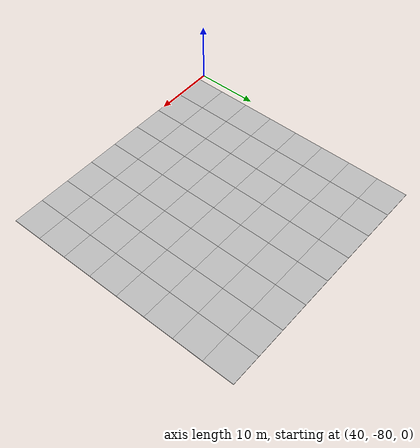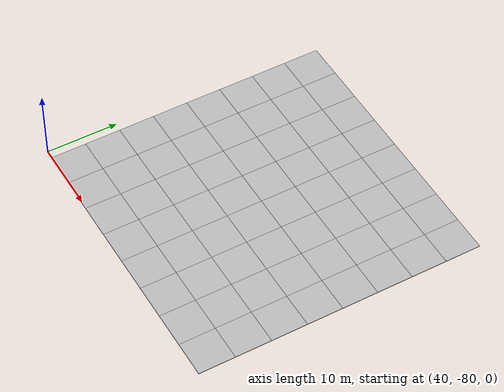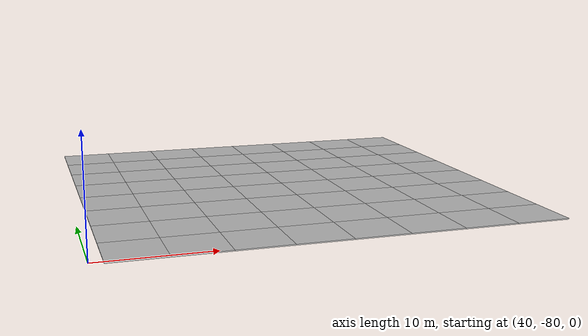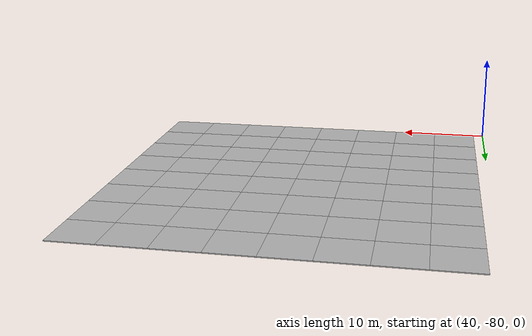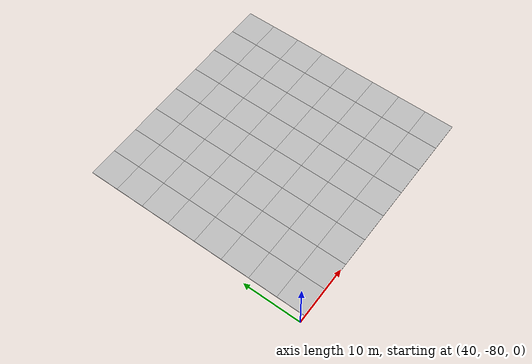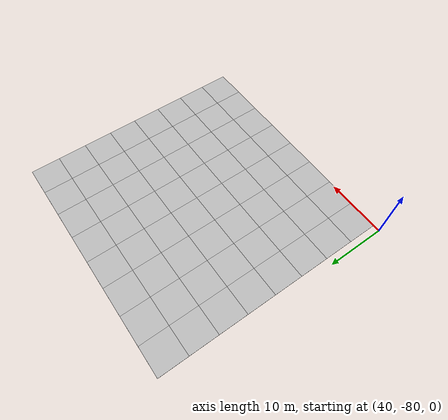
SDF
<sdf version="1.7">
 <world name="default">
  <model name="mud_plane_80x80_0">
   <model name="mud_plane_40x40_0">
    <model name="mud_plane_20x20">
     <model name="mud_plane">
      <static>1</static>
      <link name="link">
       <collision name="collision"><geometry><box><size>10 10 0.1</size></box></geometry></collision>
       <visual name="visual_1">
        <pose>-2.5 2.5 -0.05 0 -0 0</pose>
        <cast_shadows>0</cast_shadows>
        <geometry><box><size>5 5 0.1</size></box></geometry>
        <material>
         <script>
          <uri>model://mud_plane/materials/scripts</uri>
          <uri>model://mud_plane/materials/textures</uri>
          <name>vrc/mud</name>
         </script>
        </material>
       </visual>
       <visual name="visual_2">
        <pose>2.5 2.5 -0.05 0 -0 0</pose>
        <cast_shadows>0</cast_shadows>
        <geometry><box><size>5 5 0.1</size></box></geometry>
        <material>
         <script>
          <uri>model://mud_plane/materials/scripts</uri>
          <uri>model://mud_plane/materials/textures</uri>
          <name>vrc/mud</name>
         </script>
        </material>
       </visual>
       <visual name="visual_3">
        <pose>2.5 -2.5 -0.05 0 -0 0</pose>
        <cast_shadows>0</cast_shadows>
        <geometry><box><size>5 5 0.1</size></box></geometry>
        <material>
         <script>
          <uri>model://mud_plane/materials/scripts</uri>
          <uri>model://mud_plane/materials/textures</uri>
          <name>vrc/mud</name>
         </script>
        </material>
       </visual>
       <visual name="visual_4">
        <pose>-2.5 -2.5 -0.05 0 -0 0</pose>
        <cast_shadows>0</cast_shadows>
        <geometry><box><size>5 5 0.1</size></box></geometry>
        <material>
         <script>
          <uri>model://mud_plane/materials/scripts</uri>
          <uri>model://mud_plane/materials/textures</uri>
          <name>vrc/mud</name>
         </script>
        </material>
       </visual>
      </link>
      <pose>-4.99986 -4.99991 0 0 -0 0</pose>
     </model>
     <model name="mud_plane_0">
      <static>1</static>
      <link name="link">
       <collision name="collision"><geometry><box><size>10 10 0.1</size></box></geometry></collision>
       <visual name="visual_1">
        <pose>-2.5 2.5 -0.05 0 -0 0</pose>
        <cast_shadows>0</cast_shadows>
        <geometry><box><size>5 5 0.1</size></box></geometry>
        <material>
         <script>
          <uri>model://mud_plane/materials/scripts</uri>
          <uri>model://mud_plane/materials/textures</uri>
          <name>vrc/mud</name>
         </script>
        </material>
       </visual>
       <visual name="visual_2">
        <pose>2.5 2.5 -0.05 0 -0 0</pose>
        <cast_shadows>0</cast_shadows>
        <geometry><box><size>5 5 0.1</size></box></geometry>
        <material>
         <script>
          <uri>model://mud_plane/materials/scripts</uri>
          <uri>model://mud_plane/materials/textures</uri>
          <name>vrc/mud</name>
         </script>
        </material>
       </visual>
       <visual name="visual_3">
        <pose>2.5 -2.5 -0.05 0 -0 0</pose>
        <cast_shadows>0</cast_shadows>
        <geometry><box><size>5 5 0.1</size></box></geometry>
        <material>
         <script>
          <uri>model://mud_plane/materials/scripts</uri>
          <uri>model://mud_plane/materials/textures</uri>
          <name>vrc/mud</name>
         </script>
        </material>
       </visual>
       <visual name="visual_4">
        <pose>-2.5 -2.5 -0.05 0 -0 0</pose>
        <cast_shadows>0</cast_shadows>
        <geometry><box><size>5 5 0.1</size></box></geometry>
        <material>
         <script>
          <uri>model://mud_plane/materials/scripts</uri>
          <uri>model://mud_plane/materials/textures</uri>
          <name>vrc/mud</name>
         </script>
        </material>
       </visual>
      </link>
      <pose>-4.99946 4.99954 0 0 -0 0</pose>
     </model>
     <model name="mud_plane_1">
      <static>1</static>
      <link name="link">
       <collision name="collision"><geometry><box><size>10 10 0.1</size></box></geometry></collision>
       <visual name="visual_1">
        <pose>-2.5 2.5 -0.05 0 -0 0</pose>
        <cast_shadows>0</cast_shadows>
        <geometry><box><size>5 5 0.1</size></box></geometry>
        <material>
         <script>
          <uri>model://mud_plane/materials/scripts</uri>
          <uri>model://mud_plane/materials/textures</uri>
          <name>vrc/mud</name>
         </script>
        </material>
       </visual>
       <visual name="visual_2">
        <pose>2.5 2.5 -0.05 0 -0 0</pose>
        <cast_shadows>0</cast_shadows>
        <geometry><box><size>5 5 0.1</size></box></geometry>
        <material>
         <script>
          <uri>model://mud_plane/materials/scripts</uri>
          <uri>model://mud_plane/materials/textures</uri>
          <name>vrc/mud</name>
         </script>
        </material>
       </visual>
       <visual name="visual_3">
        <pose>2.5 -2.5 -0.05 0 -0 0</pose>
        <cast_shadows>0</cast_shadows>
        <geometry><box><size>5 5 0.1</size></box></geometry>
        <material>
         <script>
          <uri>model://mud_plane/materials/scripts</uri>
          <uri>model://mud_plane/materials/textures</uri>
          <name>vrc/mud</name>
         </script>
        </material>
       </visual>
       <visual name="visual_4">
        <pose>-2.5 -2.5 -0.05 0 -0 0</pose>
        <cast_shadows>0</cast_shadows>
        <geometry><box><size>5 5 0.1</size></box></geometry>
        <material>
         <script>
          <uri>model://mud_plane/materials/scripts</uri>
          <uri>model://mud_plane/materials/textures</uri>
          <name>vrc/mud</name>
         </script>
        </material>
       </visual>
      </link>
      <pose>4.99964 -4.99949 0 0 -0 0</pose>
     </model>
     <model name="mud_plane_2">
      <static>1</static>
      <link name="link">
       <collision name="collision"><geometry><box><size>10 10 0.1</size></box></geometry></collision>
       <visual name="visual_1">
        <pose>-2.5 2.5 -0.05 0 -0 0</pose>
        <cast_shadows>0</cast_shadows>
        <geometry><box><size>5 5 0.1</size></box></geometry>
        <material>
         <script>
          <uri>model://mud_plane/materials/scripts</uri>
          <uri>model://mud_plane/materials/textures</uri>
          <name>vrc/mud</name>
         </script>
        </material>
       </visual>
       <visual name="visual_2">
        <pose>2.5 2.5 -0.05 0 -0 0</pose>
        <cast_shadows>0</cast_shadows>
        <geometry><box><size>5 5 0.1</size></box></geometry>
        <material>
         <script>
          <uri>model://mud_plane/materials/scripts</uri>
          <uri>model://mud_plane/materials/textures</uri>
          <name>vrc/mud</name>
         </script>
        </material>
       </visual>
       <visual name="visual_3">
        <pose>2.5 -2.5 -0.05 0 -0 0</pose>
        <cast_shadows>0</cast_shadows>
        <geometry><box><size>5 5 0.1</size></box></geometry>
        <material>
         <script>
          <uri>model://mud_plane/materials/scripts</uri>
          <uri>model://mud_plane/materials/textures</uri>
          <name>vrc/mud</name>
         </script>
        </material>
       </visual>
       <visual name="visual_4">
        <pose>-2.5 -2.5 -0.05 0 -0 0</pose>
        <cast_shadows>0</cast_shadows>
        <geometry><box><size>5 5 0.1</size></box></geometry>
        <material>
         <script>
          <uri>model://mud_plane/materials/scripts</uri>
          <uri>model://mud_plane/materials/textures</uri>
          <name>vrc/mud</name>
         </script>
        </material>
       </visual>
      </link>
      <pose>4.99967 4.99986 0 0 -0 0</pose>
     </model>
     <static>0</static>
     <pose>-9.99895 9.99843 0 0 -0 0</pose>
    </model>
    <model name="mud_plane_20x20_0">
     <model name="mud_plane">
      <static>1</static>
      <link name="link">
       <collision name="collision"><geometry><box><size>10 10 0.1</size></box></geometry></collision>
       <visual name="visual_1">
        <pose>-2.5 2.5 -0.05 0 -0 0</pose>
        <cast_shadows>0</cast_shadows>
        <geometry><box><size>5 5 0.1</size></box></geometry>
        <material>
         <script>
          <uri>model://mud_plane/materials/scripts</uri>
          <uri>model://mud_plane/materials/textures</uri>
          <name>vrc/mud</name>
         </script>
        </material>
       </visual>
       <visual name="visual_2">
        <pose>2.5 2.5 -0.05 0 -0 0</pose>
        <cast_shadows>0</cast_shadows>
        <geometry><box><size>5 5 0.1</size></box></geometry>
        <material>
         <script>
          <uri>model://mud_plane/materials/scripts</uri>
          <uri>model://mud_plane/materials/textures</uri>
          <name>vrc/mud</name>
         </script>
        </material>
       </visual>
       <visual name="visual_3">
        <pose>2.5 -2.5 -0.05 0 -0 0</pose>
        <cast_shadows>0</cast_shadows>
        <geometry><box><size>5 5 0.1</size></box></geometry>
        <material>
         <script>
          <uri>model://mud_plane/materials/scripts</uri>
          <uri>model://mud_plane/materials/textures</uri>
          <name>vrc/mud</name>
         </script>
        </material>
       </visual>
       <visual name="visual_4">
        <pose>-2.5 -2.5 -0.05 0 -0 0</pose>
        <cast_shadows>0</cast_shadows>
        <geometry><box><size>5 5 0.1</size></box></geometry>
        <material>
         <script>
          <uri>model://mud_plane/materials/scripts</uri>
          <uri>model://mud_plane/materials/textures</uri>
          <name>vrc/mud</name>
         </script>
        </material>
       </visual>
      </link>
      <pose>-4.99986 -4.99991 0 0 -0 0</pose>
     </model>
     <model name="mud_plane_0">
      <static>1</static>
      <link name="link">
       <collision name="collision"><geometry><box><size>10 10 0.1</size></box></geometry></collision>
       <visual name="visual_1">
        <pose>-2.5 2.5 -0.05 0 -0 0</pose>
        <cast_shadows>0</cast_shadows>
        <geometry><box><size>5 5 0.1</size></box></geometry>
        <material>
         <script>
          <uri>model://mud_plane/materials/scripts</uri>
          <uri>model://mud_plane/materials/textures</uri>
          <name>vrc/mud</name>
         </script>
        </material>
       </visual>
       <visual name="visual_2">
        <pose>2.5 2.5 -0.05 0 -0 0</pose>
        <cast_shadows>0</cast_shadows>
        <geometry><box><size>5 5 0.1</size></box></geometry>
        <material>
         <script>
          <uri>model://mud_plane/materials/scripts</uri>
          <uri>model://mud_plane/materials/textures</uri>
          <name>vrc/mud</name>
         </script>
        </material>
       </visual>
       <visual name="visual_3">
        <pose>2.5 -2.5 -0.05 0 -0 0</pose>
        <cast_shadows>0</cast_shadows>
        <geometry><box><size>5 5 0.1</size></box></geometry>
        <material>
         <script>
          <uri>model://mud_plane/materials/scripts</uri>
          <uri>model://mud_plane/materials/textures</uri>
          <name>vrc/mud</name>
         </script>
        </material>
       </visual>
       <visual name="visual_4">
        <pose>-2.5 -2.5 -0.05 0 -0 0</pose>
        <cast_shadows>0</cast_shadows>
        <geometry><box><size>5 5 0.1</size></box></geometry>
        <material>
         <script>
          <uri>model://mud_plane/materials/scripts</uri>
          <uri>model://mud_plane/materials/textures</uri>
          <name>vrc/mud</name>
         </script>
        </material>
       </visual>
      </link>
      <pose>-4.99946 4.99954 0 0 -0 0</pose>
     </model>
     <model name="mud_plane_1">
      <static>1</static>
      <link name="link">
       <collision name="collision"><geometry><box><size>10 10 0.1</size></box></geometry></collision>
       <visual name="visual_1">
        <pose>-2.5 2.5 -0.05 0 -0 0</pose>
        <cast_shadows>0</cast_shadows>
        <geometry><box><size>5 5 0.1</size></box></geometry>
        <material>
         <script>
          <uri>model://mud_plane/materials/scripts</uri>
          <uri>model://mud_plane/materials/textures</uri>
          <name>vrc/mud</name>
         </script>
        </material>
       </visual>
       <visual name="visual_2">
        <pose>2.5 2.5 -0.05 0 -0 0</pose>
        <cast_shadows>0</cast_shadows>
        <geometry><box><size>5 5 0.1</size></box></geometry>
        <material>
         <script>
          <uri>model://mud_plane/materials/scripts</uri>
          <uri>model://mud_plane/materials/textures</uri>
          <name>vrc/mud</name>
         </script>
        </material>
       </visual>
       <visual name="visual_3">
        <pose>2.5 -2.5 -0.05 0 -0 0</pose>
        <cast_shadows>0</cast_shadows>
        <geometry><box><size>5 5 0.1</size></box></geometry>
        <material>
         <script>
          <uri>model://mud_plane/materials/scripts</uri>
          <uri>model://mud_plane/materials/textures</uri>
          <name>vrc/mud</name>
         </script>
        </material>
       </visual>
       <visual name="visual_4">
        <pose>-2.5 -2.5 -0.05 0 -0 0</pose>
        <cast_shadows>0</cast_shadows>
        <geometry><box><size>5 5 0.1</size></box></geometry>
        <material>
         <script>
          <uri>model://mud_plane/materials/scripts</uri>
          <uri>model://mud_plane/materials/textures</uri>
          <name>vrc/mud</name>
         </script>
        </material>
       </visual>
      </link>
      <pose>4.99964 -4.99949 0 0 -0 0</pose>
     </model>
     <model name="mud_plane_2">
      <static>1</static>
      <link name="link">
       <collision name="collision"><geometry><box><size>10 10 0.1</size></box></geometry></collision>
       <visual name="visual_1">
        <pose>-2.5 2.5 -0.05 0 -0 0</pose>
        <cast_shadows>0</cast_shadows>
        <geometry><box><size>5 5 0.1</size></box></geometry>
        <material>
         <script>
          <uri>model://mud_plane/materials/scripts</uri>
          <uri>model://mud_plane/materials/textures</uri>
          <name>vrc/mud</name>
         </script>
        </material>
       </visual>
       <visual name="visual_2">
        <pose>2.5 2.5 -0.05 0 -0 0</pose>
        <cast_shadows>0</cast_shadows>
        <geometry><box><size>5 5 0.1</size></box></geometry>
        <material>
         <script>
          <uri>model://mud_plane/materials/scripts</uri>
          <uri>model://mud_plane/materials/textures</uri>
          <name>vrc/mud</name>
         </script>
        </material>
       </visual>
       <visual name="visual_3">
        <pose>2.5 -2.5 -0.05 0 -0 0</pose>
        <cast_shadows>0</cast_shadows>
        <geometry><box><size>5 5 0.1</size></box></geometry>
        <material>
         <script>
          <uri>model://mud_plane/materials/scripts</uri>
          <uri>model://mud_plane/materials/textures</uri>
          <name>vrc/mud</name>
         </script>
        </material>
       </visual>
       <visual name="visual_4">
        <pose>-2.5 -2.5 -0.05 0 -0 0</pose>
        <cast_shadows>0</cast_shadows>
        <geometry><box><size>5 5 0.1</size></box></geometry>
        <material>
         <script>
          <uri>model://mud_plane/materials/scripts</uri>
          <uri>model://mud_plane/materials/textures</uri>
          <name>vrc/mud</name>
         </script>
        </material>
       </visual>
      </link>
      <pose>4.99967 4.99986 0 0 -0 0</pose>
     </model>
     <static>0</static>
     <pose>9.99933 9.9997 0 0 -0 0</pose>
    </model>
    <model name="mud_plane_20x20_1">
     <model name="mud_plane">
      <static>1</static>
      <link name="link">
       <collision name="collision"><geometry><box><size>10 10 0.1</size></box></geometry></collision>
       <visual name="visual_1">
        <pose>-2.5 2.5 -0.05 0 -0 0</pose>
        <cast_shadows>0</cast_shadows>
        <geometry><box><size>5 5 0.1</size></box></geometry>
        <material>
         <script>
          <uri>model://mud_plane/materials/scripts</uri>
          <uri>model://mud_plane/materials/textures</uri>
          <name>vrc/mud</name>
         </script>
        </material>
       </visual>
       <visual name="visual_2">
        <pose>2.5 2.5 -0.05 0 -0 0</pose>
        <cast_shadows>0</cast_shadows>
        <geometry><box><size>5 5 0.1</size></box></geometry>
        <material>
         <script>
          <uri>model://mud_plane/materials/scripts</uri>
          <uri>model://mud_plane/materials/textures</uri>
          <name>vrc/mud</name>
         </script>
        </material>
       </visual>
       <visual name="visual_3">
        <pose>2.5 -2.5 -0.05 0 -0 0</pose>
        <cast_shadows>0</cast_shadows>
        <geometry><box><size>5 5 0.1</size></box></geometry>
        <material>
         <script>
          <uri>model://mud_plane/materials/scripts</uri>
          <uri>model://mud_plane/materials/textures</uri>
          <name>vrc/mud</name>
         </script>
        </material>
       </visual>
       <visual name="visual_4">
        <pose>-2.5 -2.5 -0.05 0 -0 0</pose>
        <cast_shadows>0</cast_shadows>
        <geometry><box><size>5 5 0.1</size></box></geometry>
        <material>
         <script>
          <uri>model://mud_plane/materials/scripts</uri>
          <uri>model://mud_plane/materials/textures</uri>
          <name>vrc/mud</name>
         </script>
        </material>
       </visual>
      </link>
      <pose>-4.99986 -4.99991 0 0 -0 0</pose>
     </model>
     <model name="mud_plane_0">
      <static>1</static>
      <link name="link">
       <collision name="collision"><geometry><box><size>10 10 0.1</size></box></geometry></collision>
       <visual name="visual_1">
        <pose>-2.5 2.5 -0.05 0 -0 0</pose>
        <cast_shadows>0</cast_shadows>
        <geometry><box><size>5 5 0.1</size></box></geometry>
        <material>
         <script>
          <uri>model://mud_plane/materials/scripts</uri>
          <uri>model://mud_plane/materials/textures</uri>
          <name>vrc/mud</name>
         </script>
        </material>
       </visual>
       <visual name="visual_2">
        <pose>2.5 2.5 -0.05 0 -0 0</pose>
        <cast_shadows>0</cast_shadows>
        <geometry><box><size>5 5 0.1</size></box></geometry>
        <material>
         <script>
          <uri>model://mud_plane/materials/scripts</uri>
          <uri>model://mud_plane/materials/textures</uri>
          <name>vrc/mud</name>
         </script>
        </material>
       </visual>
       <visual name="visual_3">
        <pose>2.5 -2.5 -0.05 0 -0 0</pose>
        <cast_shadows>0</cast_shadows>
        <geometry><box><size>5 5 0.1</size></box></geometry>
        <material>
         <script>
          <uri>model://mud_plane/materials/scripts</uri>
          <uri>model://mud_plane/materials/textures</uri>
          <name>vrc/mud</name>
         </script>
        </material>
       </visual>
       <visual name="visual_4">
        <pose>-2.5 -2.5 -0.05 0 -0 0</pose>
        <cast_shadows>0</cast_shadows>
        <geometry><box><size>5 5 0.1</size></box></geometry>
        <material>
         <script>
          <uri>model://mud_plane/materials/scripts</uri>
          <uri>model://mud_plane/materials/textures</uri>
          <name>vrc/mud</name>
         </script>
        </material>
       </visual>
      </link>
      <pose>-4.99946 4.99954 0 0 -0 0</pose>
     </model>
     <model name="mud_plane_1">
      <static>1</static>
      <link name="link">
       <collision name="collision"><geometry><box><size>10 10 0.1</size></box></geometry></collision>
       <visual name="visual_1">
        <pose>-2.5 2.5 -0.05 0 -0 0</pose>
        <cast_shadows>0</cast_shadows>
        <geometry><box><size>5 5 0.1</size></box></geometry>
        <material>
         <script>
          <uri>model://mud_plane/materials/scripts</uri>
          <uri>model://mud_plane/materials/textures</uri>
          <name>vrc/mud</name>
         </script>
        </material>
       </visual>
       <visual name="visual_2">
        <pose>2.5 2.5 -0.05 0 -0 0</pose>
        <cast_shadows>0</cast_shadows>
        <geometry><box><size>5 5 0.1</size></box></geometry>
        <material>
         <script>
          <uri>model://mud_plane/materials/scripts</uri>
          <uri>model://mud_plane/materials/textures</uri>
          <name>vrc/mud</name>
         </script>
        </material>
       </visual>
       <visual name="visual_3">
        <pose>2.5 -2.5 -0.05 0 -0 0</pose>
        <cast_shadows>0</cast_shadows>
        <geometry><box><size>5 5 0.1</size></box></geometry>
        <material>
         <script>
          <uri>model://mud_plane/materials/scripts</uri>
          <uri>model://mud_plane/materials/textures</uri>
          <name>vrc/mud</name>
         </script>
        </material>
       </visual>
       <visual name="visual_4">
        <pose>-2.5 -2.5 -0.05 0 -0 0</pose>
        <cast_shadows>0</cast_shadows>
        <geometry><box><size>5 5 0.1</size></box></geometry>
        <material>
         <script>
          <uri>model://mud_plane/materials/scripts</uri>
          <uri>model://mud_plane/materials/textures</uri>
          <name>vrc/mud</name>
         </script>
        </material>
       </visual>
      </link>
      <pose>4.99964 -4.99949 0 0 -0 0</pose>
     </model>
     <model name="mud_plane_2">
      <static>1</static>
      <link name="link">
       <collision name="collision"><geometry><box><size>10 10 0.1</size></box></geometry></collision>
       <visual name="visual_1">
        <pose>-2.5 2.5 -0.05 0 -0 0</pose>
        <cast_shadows>0</cast_shadows>
        <geometry><box><size>5 5 0.1</size></box></geometry>
        <material>
         <script>
          <uri>model://mud_plane/materials/scripts</uri>
          <uri>model://mud_plane/materials/textures</uri>
          <name>vrc/mud</name>
         </script>
        </material>
       </visual>
       <visual name="visual_2">
        <pose>2.5 2.5 -0.05 0 -0 0</pose>
        <cast_shadows>0</cast_shadows>
        <geometry><box><size>5 5 0.1</size></box></geometry>
        <material>
         <script>
          <uri>model://mud_plane/materials/scripts</uri>
          <uri>model://mud_plane/materials/textures</uri>
          <name>vrc/mud</name>
         </script>
        </material>
       </visual>
       <visual name="visual_3">
        <pose>2.5 -2.5 -0.05 0 -0 0</pose>
        <cast_shadows>0</cast_shadows>
        <geometry><box><size>5 5 0.1</size></box></geometry>
        <material>
         <script>
          <uri>model://mud_plane/materials/scripts</uri>
          <uri>model://mud_plane/materials/textures</uri>
          <name>vrc/mud</name>
         </script>
        </material>
       </visual>
       <visual name="visual_4">
        <pose>-2.5 -2.5 -0.05 0 -0 0</pose>
        <cast_shadows>0</cast_shadows>
        <geometry><box><size>5 5 0.1</size></box></geometry>
        <material>
         <script>
          <uri>model://mud_plane/materials/scripts</uri>
          <uri>model://mud_plane/materials/textures</uri>
          <name>vrc/mud</name>
         </script>
        </material>
       </visual>
      </link>
      <pose>4.99967 4.99986 0 0 -0 0</pose>
     </model>
     <static>0</static>
     <pose>9.9993 -9.99877 0 0 -0 0</pose>
    </model>
    <model name="mud_plane_20x20_2">
     <model name="mud_plane">
      <static>1</static>
      <link name="link">
       <collision name="collision"><geometry><box><size>10 10 0.1</size></box></geometry></collision>
       <visual name="visual_1">
        <pose>-2.5 2.5 -0.05 0 -0 0</pose>
        <cast_shadows>0</cast_shadows>
        <geometry><box><size>5 5 0.1</size></box></geometry>
        <material>
         <script>
          <uri>model://mud_plane/materials/scripts</uri>
          <uri>model://mud_plane/materials/textures</uri>
          <name>vrc/mud</name>
         </script>
        </material>
       </visual>
       <visual name="visual_2">
        <pose>2.5 2.5 -0.05 0 -0 0</pose>
        <cast_shadows>0</cast_shadows>
        <geometry><box><size>5 5 0.1</size></box></geometry>
        <material>
         <script>
          <uri>model://mud_plane/materials/scripts</uri>
          <uri>model://mud_plane/materials/textures</uri>
          <name>vrc/mud</name>
         </script>
        </material>
       </visual>
       <visual name="visual_3">
        <pose>2.5 -2.5 -0.05 0 -0 0</pose>
        <cast_shadows>0</cast_shadows>
        <geometry><box><size>5 5 0.1</size></box></geometry>
        <material>
         <script>
          <uri>model://mud_plane/materials/scripts</uri>
          <uri>model://mud_plane/materials/textures</uri>
          <name>vrc/mud</name>
         </script>
        </material>
       </visual>
       <visual name="visual_4">
        <pose>-2.5 -2.5 -0.05 0 -0 0</pose>
        <cast_shadows>0</cast_shadows>
        <geometry><box><size>5 5 0.1</size></box></geometry>
        <material>
         <script>
          <uri>model://mud_plane/materials/scripts</uri>
          <uri>model://mud_plane/materials/textures</uri>
          <name>vrc/mud</name>
         </script>
        </material>
       </visual>
      </link>
      <pose>-4.99986 -4.99991 0 0 -0 0</pose>
     </model>
     <model name="mud_plane_0">
      <static>1</static>
      <link name="link">
       <collision name="collision"><geometry><box><size>10 10 0.1</size></box></geometry></collision>
       <visual name="visual_1">
        <pose>-2.5 2.5 -0.05 0 -0 0</pose>
        <cast_shadows>0</cast_shadows>
        <geometry><box><size>5 5 0.1</size></box></geometry>
        <material>
         <script>
          <uri>model://mud_plane/materials/scripts</uri>
          <uri>model://mud_plane/materials/textures</uri>
          <name>vrc/mud</name>
         </script>
        </material>
       </visual>
       <visual name="visual_2">
        <pose>2.5 2.5 -0.05 0 -0 0</pose>
        <cast_shadows>0</cast_shadows>
        <geometry><box><size>5 5 0.1</size></box></geometry>
        <material>
         <script>
          <uri>model://mud_plane/materials/scripts</uri>
          <uri>model://mud_plane/materials/textures</uri>
          <name>vrc/mud</name>
         </script>
        </material>
       </visual>
       <visual name="visual_3">
        <pose>2.5 -2.5 -0.05 0 -0 0</pose>
        <cast_shadows>0</cast_shadows>
        <geometry><box><size>5 5 0.1</size></box></geometry>
        <material>
         <script>
          <uri>model://mud_plane/materials/scripts</uri>
          <uri>model://mud_plane/materials/textures</uri>
          <name>vrc/mud</name>
         </script>
        </material>
       </visual>
       <visual name="visual_4">
        <pose>-2.5 -2.5 -0.05 0 -0 0</pose>
        <cast_shadows>0</cast_shadows>
        <geometry><box><size>5 5 0.1</size></box></geometry>
        <material>
         <script>
          <uri>model://mud_plane/materials/scripts</uri>
          <uri>model://mud_plane/materials/textures</uri>
          <name>vrc/mud</name>
         </script>
        </material>
       </visual>
      </link>
      <pose>-4.99946 4.99954 0 0 -0 0</pose>
     </model>
     <model name="mud_plane_1">
      <static>1</static>
      <link name="link">
       <collision name="collision"><geometry><box><size>10 10 0.1</size></box></geometry></collision>
       <visual name="visual_1">
        <pose>-2.5 2.5 -0.05 0 -0 0</pose>
        <cast_shadows>0</cast_shadows>
        <geometry><box><size>5 5 0.1</size></box></geometry>
        <material>
         <script>
          <uri>model://mud_plane/materials/scripts</uri>
          <uri>model://mud_plane/materials/textures</uri>
          <name>vrc/mud</name>
         </script>
        </material>
       </visual>
       <visual name="visual_2">
        <pose>2.5 2.5 -0.05 0 -0 0</pose>
        <cast_shadows>0</cast_shadows>
        <geometry><box><size>5 5 0.1</size></box></geometry>
        <material>
         <script>
          <uri>model://mud_plane/materials/scripts</uri>
          <uri>model://mud_plane/materials/textures</uri>
          <name>vrc/mud</name>
         </script>
        </material>
       </visual>
       <visual name="visual_3">
        <pose>2.5 -2.5 -0.05 0 -0 0</pose>
        <cast_shadows>0</cast_shadows>
        <geometry><box><size>5 5 0.1</size></box></geometry>
        <material>
         <script>
          <uri>model://mud_plane/materials/scripts</uri>
          <uri>model://mud_plane/materials/textures</uri>
          <name>vrc/mud</name>
         </script>
        </material>
       </visual>
       <visual name="visual_4">
        <pose>-2.5 -2.5 -0.05 0 -0 0</pose>
        <cast_shadows>0</cast_shadows>
        <geometry><box><size>5 5 0.1</size></box></geometry>
        <material>
         <script>
          <uri>model://mud_plane/materials/scripts</uri>
          <uri>model://mud_plane/materials/textures</uri>
          <name>vrc/mud</name>
         </script>
        </material>
       </visual>
      </link>
      <pose>4.99964 -4.99949 0 0 -0 0</pose>
     </model>
     <model name="mud_plane_2">
      <static>1</static>
      <link name="link">
       <collision name="collision"><geometry><box><size>10 10 0.1</size></box></geometry></collision>
       <visual name="visual_1">
        <pose>-2.5 2.5 -0.05 0 -0 0</pose>
        <cast_shadows>0</cast_shadows>
        <geometry><box><size>5 5 0.1</size></box></geometry>
        <material>
         <script>
          <uri>model://mud_plane/materials/scripts</uri>
          <uri>model://mud_plane/materials/textures</uri>
          <name>vrc/mud</name>
         </script>
        </material>
       </visual>
       <visual name="visual_2">
        <pose>2.5 2.5 -0.05 0 -0 0</pose>
        <cast_shadows>0</cast_shadows>
        <geometry><box><size>5 5 0.1</size></box></geometry>
        <material>
         <script>
          <uri>model://mud_plane/materials/scripts</uri>
          <uri>model://mud_plane/materials/textures</uri>
          <name>vrc/mud</name>
         </script>
        </material>
       </visual>
       <visual name="visual_3">
        <pose>2.5 -2.5 -0.05 0 -0 0</pose>
        <cast_shadows>0</cast_shadows>
        <geometry><box><size>5 5 0.1</size></box></geometry>
        <material>
         <script>
          <uri>model://mud_plane/materials/scripts</uri>
          <uri>model://mud_plane/materials/textures</uri>
          <name>vrc/mud</name>
         </script>
        </material>
       </visual>
       <visual name="visual_4">
        <pose>-2.5 -2.5 -0.05 0 -0 0</pose>
        <cast_shadows>0</cast_shadows>
        <geometry><box><size>5 5 0.1</size></box></geometry>
        <material>
         <script>
          <uri>model://mud_plane/materials/scripts</uri>
          <uri>model://mud_plane/materials/textures</uri>
          <name>vrc/mud</name>
         </script>
        </material>
       </visual>
      </link>
      <pose>4.99967 4.99986 0 0 -0 0</pose>
     </model>
     <static>0</static>
     <pose>-9.99969 -9.99935 0 0 -0 0</pose>
    </model>
    <static>0</static>
    <pose>19.9985 -19.998 0 0 -0 0</pose>
   </model>
   <static>0</static>
   <pose>41.1505 -40.0966 0 0 -0 0</pose>
  </model>
 </world>
</sdf>
